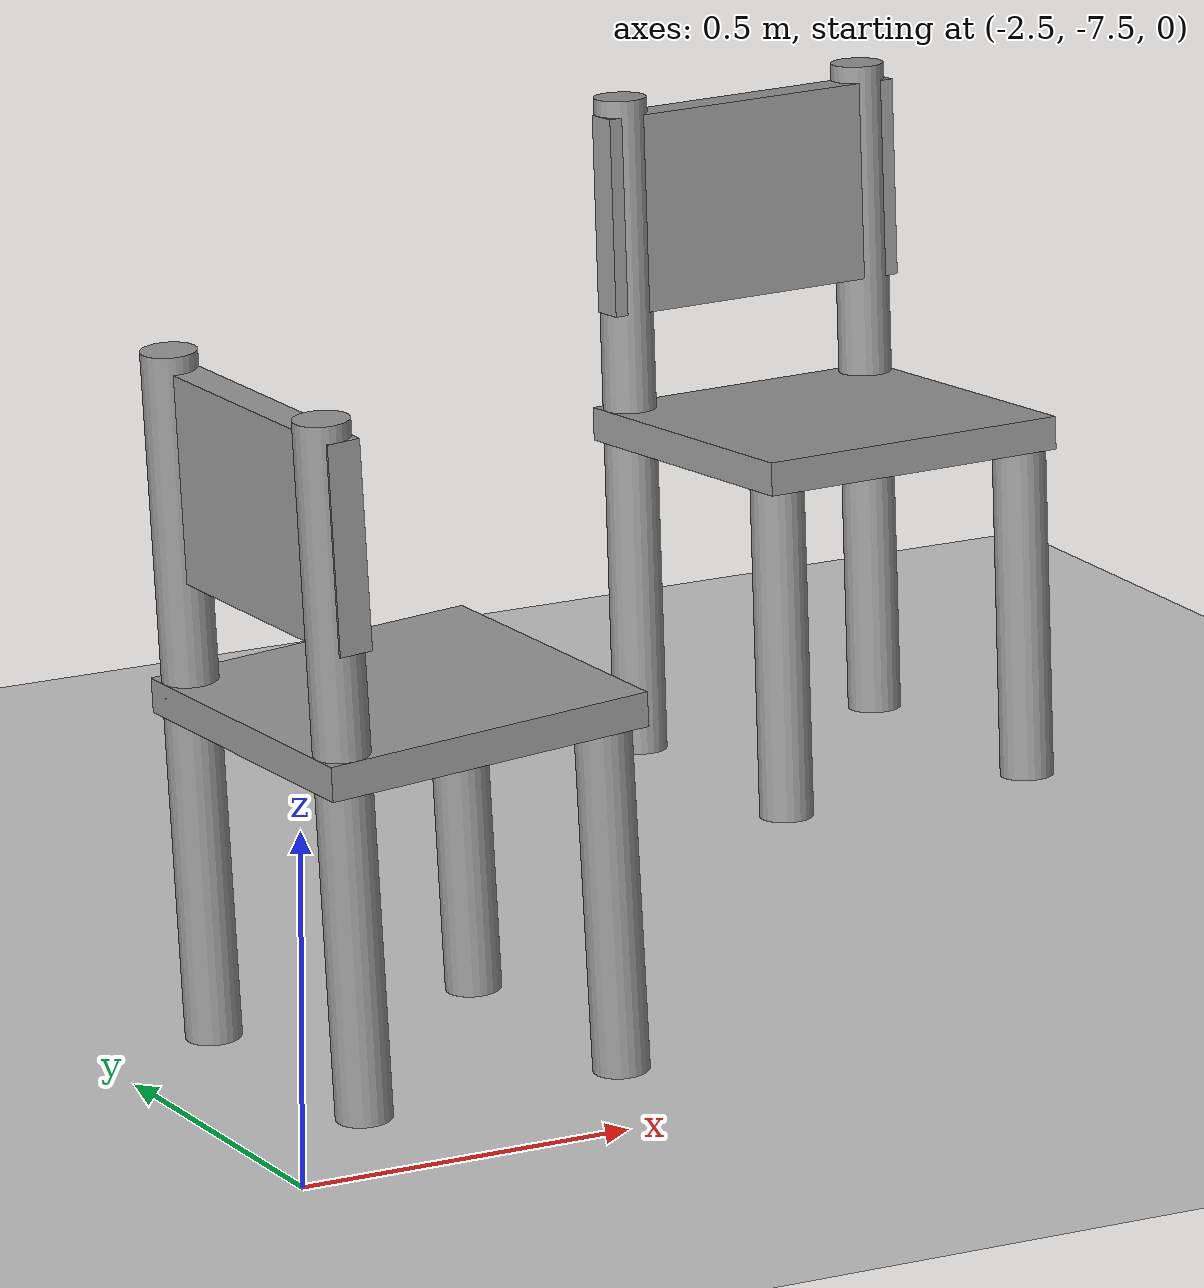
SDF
<sdf version="1.6">
 <world name="default">
  <model name="ground_plane">
   <static>1</static>
   <link name="link">
    <collision name="collision">
     <geometry><plane><normal>0 0 1</normal><size>100 100</size></plane></geometry>
     <surface><friction><ode><mu>100</mu><mu2>50</mu2></ode></friction></surface>
    </collision>
    <visual name="visual">
     <cast_shadows>0</cast_shadows>
     <geometry><plane><normal>0 0 1</normal><size>100 100</size></plane></geometry>
     <material>
      <script><uri>file://media/materials/scripts/gazebo.material</uri><name>Gazebo/Grey</name></script>
     </material>
    </visual>
   </link>
  </model>
  <model name="chair_clone_0">
   <link name="link_2">
    <pose>0.235 -0.21 -0.2375 0 -0 0</pose>
    <inertial>
     <mass>1</mass>
     <inertia><ixx>0.145833</ixx><ixy>0</ixy><ixz>0</ixz><iyy>0.145833</iyy><iyz>0</iyz><izz>0.125</izz></inertia>
    </inertial>
    <visual name="visual">
     <geometry><cylinder><radius>0.04</radius><length>0.5</length></cylinder></geometry>
     <material>
      <lighting>1</lighting>
      <script><uri>file://media/materials/scripts/gazebo.material</uri><name>Gazebo/Grey</name></script>
      <shader type="pixel"><normal_map>__default__</normal_map></shader>
      <ambient>0.3 0.3 0.3 1</ambient>
      <diffuse>0.7 0.7 0.7 1</diffuse>
      <specular>0.01 0.01 0.01 1</specular>
      <emissive>0 0 0 1</emissive>
     </material>
    </visual>
    <collision name="collision">
     <geometry><cylinder><radius>0.04</radius><length>0.5</length></cylinder></geometry>
     <surface>
      <friction>
       <ode><mu>1</mu><mu2>1</mu2><fdir1>0 0 0</fdir1><slip1>0</slip1><slip2>0</slip2></ode>
       <torsional>
        <coefficient>1</coefficient>
        <patch_radius>0</patch_radius>
        <surface_radius>0</surface_radius>
        <use_patch_radius>1</use_patch_radius>
        <ode><slip>0</slip></ode>
       </torsional>
      </friction>
      <bounce><restitution_coefficient>0</restitution_coefficient><threshold>1e+06</threshold></bounce>
      <contact>
       <collide_without_contact>0</collide_without_contact>
       <collide_without_contact_bitmask>1</collide_without_contact_bitmask>
       <collide_bitmask>1</collide_bitmask>
       <ode>
        <soft_cfm>0</soft_cfm>
        <soft_erp>0.2</soft_erp>
        <kp>1e+13</kp>
        <kd>1</kd>
        <max_vel>0.01</max_vel>
        <min_depth>0</min_depth>
       </ode>
       <bullet>
        <split_impulse>1</split_impulse>
        <split_impulse_penetration_threshold>-0.01</split_impulse_penetration_threshold>
        <soft_cfm>0</soft_cfm>
        <soft_erp>0.2</soft_erp>
        <kp>1e+13</kp>
        <kd>1</kd>
       </bullet>
      </contact>
     </surface>
    </collision>
   </link>
   <link name="link_2_clone">
    <pose>0.245 0.21 -0.2375 0 -0 0</pose>
    <inertial>
     <mass>1</mass>
     <inertia><ixx>0.145833</ixx><ixy>0</ixy><ixz>0</ixz><iyy>0.145833</iyy><iyz>0</iyz><izz>0.125</izz></inertia>
    </inertial>
    <visual name="visual">
     <geometry><cylinder><radius>0.04</radius><length>0.5</length></cylinder></geometry>
     <material>
      <lighting>1</lighting>
      <script><uri>file://media/materials/scripts/gazebo.material</uri><name>Gazebo/Grey</name></script>
      <shader type="pixel"><normal_map>__default__</normal_map></shader>
      <ambient>0.3 0.3 0.3 1</ambient>
      <diffuse>0.7 0.7 0.7 1</diffuse>
      <specular>0.01 0.01 0.01 1</specular>
      <emissive>0 0 0 1</emissive>
     </material>
    </visual>
    <collision name="collision">
     <geometry><cylinder><radius>0.04</radius><length>0.5</length></cylinder></geometry>
     <surface>
      <friction>
       <ode><mu>1</mu><mu2>1</mu2><fdir1>0 0 0</fdir1><slip1>0</slip1><slip2>0</slip2></ode>
       <torsional>
        <coefficient>1</coefficient>
        <patch_radius>0</patch_radius>
        <surface_radius>0</surface_radius>
        <use_patch_radius>1</use_patch_radius>
        <ode><slip>0</slip></ode>
       </torsional>
      </friction>
      <bounce><restitution_coefficient>0</restitution_coefficient><threshold>1e+06</threshold></bounce>
      <contact>
       <collide_without_contact>0</collide_without_contact>
       <collide_without_contact_bitmask>1</collide_without_contact_bitmask>
       <collide_bitmask>1</collide_bitmask>
       <ode>
        <soft_cfm>0</soft_cfm>
        <soft_erp>0.2</soft_erp>
        <kp>1e+13</kp>
        <kd>1</kd>
        <max_vel>0.01</max_vel>
        <min_depth>0</min_depth>
       </ode>
       <bullet>
        <split_impulse>1</split_impulse>
        <split_impulse_penetration_threshold>-0.01</split_impulse_penetration_threshold>
        <soft_cfm>0</soft_cfm>
        <soft_erp>0.2</soft_erp>
        <kp>1e+13</kp>
        <kd>1</kd>
       </bullet>
      </contact>
     </surface>
    </collision>
   </link>
   <link name="link_2_clone_1">
    <pose>-0.175 -0.21 0.0375 0 -0 0</pose>
    <inertial>
     <mass>1</mass>
     <inertia><ixx>0.145833</ixx><ixy>0</ixy><ixz>0</ixz><iyy>0.145833</iyy><iyz>0</iyz><izz>0.125</izz></inertia>
    </inertial>
    <visual name="visual">
     <geometry><cylinder><radius>0.04</radius><length>1</length></cylinder></geometry>
     <material>
      <lighting>1</lighting>
      <script><uri>file://media/materials/scripts/gazebo.material</uri><name>Gazebo/Grey</name></script>
      <shader type="pixel"><normal_map>__default__</normal_map></shader>
      <ambient>0.3 0.3 0.3 1</ambient>
      <diffuse>0.7 0.7 0.7 1</diffuse>
      <specular>0.01 0.01 0.01 1</specular>
      <emissive>0 0 0 1</emissive>
     </material>
    </visual>
    <collision name="collision">
     <geometry><cylinder><radius>0.04</radius><length>1</length></cylinder></geometry>
     <surface>
      <friction>
       <ode><mu>1</mu><mu2>1</mu2><fdir1>0 0 0</fdir1><slip1>0</slip1><slip2>0</slip2></ode>
       <torsional>
        <coefficient>1</coefficient>
        <patch_radius>0</patch_radius>
        <surface_radius>0</surface_radius>
        <use_patch_radius>1</use_patch_radius>
        <ode><slip>0</slip></ode>
       </torsional>
      </friction>
      <bounce><restitution_coefficient>0</restitution_coefficient><threshold>1e+06</threshold></bounce>
      <contact>
       <collide_without_contact>0</collide_without_contact>
       <collide_without_contact_bitmask>1</collide_without_contact_bitmask>
       <collide_bitmask>1</collide_bitmask>
       <ode>
        <soft_cfm>0</soft_cfm>
        <soft_erp>0.2</soft_erp>
        <kp>1e+13</kp>
        <kd>1</kd>
        <max_vel>0.01</max_vel>
        <min_depth>0</min_depth>
       </ode>
       <bullet>
        <split_impulse>1</split_impulse>
        <split_impulse_penetration_threshold>-0.01</split_impulse_penetration_threshold>
        <soft_cfm>0</soft_cfm>
        <soft_erp>0.2</soft_erp>
        <kp>1e+13</kp>
        <kd>1</kd>
       </bullet>
      </contact>
     </surface>
    </collision>
   </link>
   <link name="link_2_clone_1_clone">
    <pose>-0.175 0.21 0.0375 0 -0 0</pose>
    <inertial>
     <mass>1</mass>
     <inertia><ixx>0.145833</ixx><ixy>0</ixy><ixz>0</ixz><iyy>0.145833</iyy><iyz>0</iyz><izz>0.125</izz></inertia>
    </inertial>
    <visual name="visual">
     <geometry><cylinder><radius>0.04</radius><length>1</length></cylinder></geometry>
     <material>
      <lighting>1</lighting>
      <script><uri>file://media/materials/scripts/gazebo.material</uri><name>Gazebo/Grey</name></script>
      <shader type="pixel"><normal_map>__default__</normal_map></shader>
      <ambient>0.3 0.3 0.3 1</ambient>
      <diffuse>0.7 0.7 0.7 1</diffuse>
      <specular>0.01 0.01 0.01 1</specular>
      <emissive>0 0 0 1</emissive>
     </material>
    </visual>
    <collision name="collision">
     <geometry><cylinder><radius>0.04</radius><length>1</length></cylinder></geometry>
     <surface>
      <friction>
       <ode><mu>1</mu><mu2>1</mu2><fdir1>0 0 0</fdir1><slip1>0</slip1><slip2>0</slip2></ode>
       <torsional>
        <coefficient>1</coefficient>
        <patch_radius>0</patch_radius>
        <surface_radius>0</surface_radius>
        <use_patch_radius>1</use_patch_radius>
        <ode><slip>0</slip></ode>
       </torsional>
      </friction>
      <bounce><restitution_coefficient>0</restitution_coefficient><threshold>1e+06</threshold></bounce>
      <contact>
       <collide_without_contact>0</collide_without_contact>
       <collide_without_contact_bitmask>1</collide_without_contact_bitmask>
       <collide_bitmask>1</collide_bitmask>
       <ode>
        <soft_cfm>0</soft_cfm>
        <soft_erp>0.2</soft_erp>
        <kp>1e+13</kp>
        <kd>1</kd>
        <max_vel>0.01</max_vel>
        <min_depth>0</min_depth>
       </ode>
       <bullet>
        <split_impulse>1</split_impulse>
        <split_impulse_penetration_threshold>-0.01</split_impulse_penetration_threshold>
        <soft_cfm>0</soft_cfm>
        <soft_erp>0.2</soft_erp>
        <kp>1e+13</kp>
        <kd>1</kd>
       </bullet>
      </contact>
     </surface>
    </collision>
   </link>
   <link name="link_3">
    <pose>0.035 -0 0.0375 0 -0 0</pose>
    <inertial>
     <mass>1</mass>
     <inertia>
      <ixx>0.166667</ixx>
      <ixy>0</ixy>
      <ixz>0</ixz>
      <iyy>0.166667</iyy>
      <iyz>0</iyz>
      <izz>0.166667</izz>
     </inertia>
    </inertial>
    <visual name="visual">
     <geometry><box><size>0.5 0.5 0.05</size></box></geometry>
     <material>
      <lighting>1</lighting>
      <script><uri>file://media/materials/scripts/gazebo.material</uri><name>Gazebo/Grey</name></script>
      <shader type="pixel"><normal_map>__default__</normal_map></shader>
      <ambient>0.3 0.3 0.3 1</ambient>
      <diffuse>0.7 0.7 0.7 1</diffuse>
      <specular>0.01 0.01 0.01 1</specular>
      <emissive>0 0 0 1</emissive>
     </material>
    </visual>
    <collision name="collision">
     <geometry><box><size>0.5 0.5 0.05</size></box></geometry>
     <surface>
      <friction>
       <ode><mu>1</mu><mu2>1</mu2><fdir1>0 0 0</fdir1><slip1>0</slip1><slip2>0</slip2></ode>
       <torsional>
        <coefficient>1</coefficient>
        <patch_radius>0</patch_radius>
        <surface_radius>0</surface_radius>
        <use_patch_radius>1</use_patch_radius>
        <ode><slip>0</slip></ode>
       </torsional>
      </friction>
      <bounce><restitution_coefficient>0</restitution_coefficient><threshold>1e+06</threshold></bounce>
      <contact>
       <collide_without_contact>0</collide_without_contact>
       <collide_without_contact_bitmask>1</collide_without_contact_bitmask>
       <collide_bitmask>1</collide_bitmask>
       <ode>
        <soft_cfm>0</soft_cfm>
        <soft_erp>0.2</soft_erp>
        <kp>1e+13</kp>
        <kd>1</kd>
        <max_vel>0.01</max_vel>
        <min_depth>0</min_depth>
       </ode>
       <bullet>
        <split_impulse>1</split_impulse>
        <split_impulse_penetration_threshold>-0.01</split_impulse_penetration_threshold>
        <soft_cfm>0</soft_cfm>
        <soft_erp>0.2</soft_erp>
        <kp>1e+13</kp>
        <kd>1</kd>
       </bullet>
      </contact>
     </surface>
    </collision>
   </link>
   <link name="link_4">
    <pose>-0.165 -0 0.3625 0 -0 0</pose>
    <inertial>
     <mass>1</mass>
     <inertia>
      <ixx>0.166667</ixx>
      <ixy>0</ixy>
      <ixz>0</ixz>
      <iyy>0.166667</iyy>
      <iyz>0</iyz>
      <izz>0.166667</izz>
     </inertia>
    </inertial>
    <visual name="visual">
     <geometry><box><size>0.05 0.5 0.3</size></box></geometry>
     <material>
      <lighting>1</lighting>
      <script><uri>file://media/materials/scripts/gazebo.material</uri><name>Gazebo/Grey</name></script>
      <shader type="pixel"><normal_map>__default__</normal_map></shader>
      <ambient>0.3 0.3 0.3 1</ambient>
      <diffuse>0.7 0.7 0.7 1</diffuse>
      <specular>0.01 0.01 0.01 1</specular>
      <emissive>0 0 0 1</emissive>
     </material>
    </visual>
    <collision name="collision">
     <geometry><box><size>0.05 0.5 0.3</size></box></geometry>
     <surface>
      <friction>
       <ode><mu>1</mu><mu2>1</mu2><fdir1>0 0 0</fdir1><slip1>0</slip1><slip2>0</slip2></ode>
       <torsional>
        <coefficient>1</coefficient>
        <patch_radius>0</patch_radius>
        <surface_radius>0</surface_radius>
        <use_patch_radius>1</use_patch_radius>
        <ode><slip>0</slip></ode>
       </torsional>
      </friction>
      <bounce><restitution_coefficient>0</restitution_coefficient><threshold>1e+06</threshold></bounce>
      <contact>
       <collide_without_contact>0</collide_without_contact>
       <collide_without_contact_bitmask>1</collide_without_contact_bitmask>
       <collide_bitmask>1</collide_bitmask>
       <ode>
        <soft_cfm>0</soft_cfm>
        <soft_erp>0.2</soft_erp>
        <kp>1e+13</kp>
        <kd>1</kd>
        <max_vel>0.01</max_vel>
        <min_depth>0</min_depth>
       </ode>
       <bullet>
        <split_impulse>1</split_impulse>
        <split_impulse_penetration_threshold>-0.01</split_impulse_penetration_threshold>
        <soft_cfm>0</soft_cfm>
        <soft_erp>0.2</soft_erp>
        <kp>1e+13</kp>
        <kd>1</kd>
       </bullet>
      </contact>
     </surface>
    </collision>
   </link>
   <joint name="link_3_JOINT_10" type="fixed">
    <parent>link_3</parent>
    <child>link_2_clone_1_clone</child>
    <physics>
     <ode><limit><cfm>0</cfm><erp>0.2</erp></limit><suspension><cfm>0</cfm><erp>0.2</erp></suspension></ode>
    </physics>
   </joint>
   <joint name="link_3_JOINT_11" type="fixed">
    <parent>link_3</parent>
    <child>link_2_clone_1</child>
    <physics>
     <ode><limit><cfm>0</cfm><erp>0.2</erp></limit><suspension><cfm>0</cfm><erp>0.2</erp></suspension></ode>
    </physics>
   </joint>
   <joint name="link_3_JOINT_12" type="fixed">
    <parent>link_3</parent>
    <child>link_2</child>
    <physics>
     <ode><limit><cfm>0</cfm><erp>0.2</erp></limit><suspension><cfm>0</cfm><erp>0.2</erp></suspension></ode>
    </physics>
   </joint>
   <joint name="link_3_JOINT_14" type="fixed">
    <parent>link_3</parent>
    <child>link_4</child>
    <physics>
     <ode><limit><cfm>0</cfm><erp>0.2</erp></limit><suspension><cfm>0</cfm><erp>0.2</erp></suspension></ode>
    </physics>
   </joint>
   <joint name="link_3_JOINT_9" type="fixed">
    <parent>link_3</parent>
    <child>link_2_clone</child>
    <physics>
     <ode><limit><cfm>0</cfm><erp>0.2</erp></limit><suspension><cfm>0</cfm><erp>0.2</erp></suspension></ode>
    </physics>
   </joint>
   <static>0</static>
   <pose>-0.894461 -6.076 0.474728 -9e-06 -0.060887 -1.52503</pose>
  </model>
  <model name="chair_clone_1">
   <link name="link_2">
    <pose>0.235 -0.21 -0.2375 0 -0 0</pose>
    <inertial>
     <mass>1</mass>
     <inertia><ixx>0.145833</ixx><ixy>0</ixy><ixz>0</ixz><iyy>0.145833</iyy><iyz>0</iyz><izz>0.125</izz></inertia>
    </inertial>
    <visual name="visual">
     <geometry><cylinder><radius>0.04</radius><length>0.5</length></cylinder></geometry>
     <material>
      <lighting>1</lighting>
      <script><uri>file://media/materials/scripts/gazebo.material</uri><name>Gazebo/Grey</name></script>
      <shader type="pixel"><normal_map>__default__</normal_map></shader>
      <ambient>0.3 0.3 0.3 1</ambient>
      <diffuse>0.7 0.7 0.7 1</diffuse>
      <specular>0.01 0.01 0.01 1</specular>
      <emissive>0 0 0 1</emissive>
     </material>
    </visual>
    <collision name="collision">
     <geometry><cylinder><radius>0.04</radius><length>0.5</length></cylinder></geometry>
     <surface>
      <friction>
       <ode><mu>1</mu><mu2>1</mu2><fdir1>0 0 0</fdir1><slip1>0</slip1><slip2>0</slip2></ode>
       <torsional>
        <coefficient>1</coefficient>
        <patch_radius>0</patch_radius>
        <surface_radius>0</surface_radius>
        <use_patch_radius>1</use_patch_radius>
        <ode><slip>0</slip></ode>
       </torsional>
      </friction>
      <bounce><restitution_coefficient>0</restitution_coefficient><threshold>1e+06</threshold></bounce>
      <contact>
       <collide_without_contact>0</collide_without_contact>
       <collide_without_contact_bitmask>1</collide_without_contact_bitmask>
       <collide_bitmask>1</collide_bitmask>
       <ode>
        <soft_cfm>0</soft_cfm>
        <soft_erp>0.2</soft_erp>
        <kp>1e+13</kp>
        <kd>1</kd>
        <max_vel>0.01</max_vel>
        <min_depth>0</min_depth>
       </ode>
       <bullet>
        <split_impulse>1</split_impulse>
        <split_impulse_penetration_threshold>-0.01</split_impulse_penetration_threshold>
        <soft_cfm>0</soft_cfm>
        <soft_erp>0.2</soft_erp>
        <kp>1e+13</kp>
        <kd>1</kd>
       </bullet>
      </contact>
     </surface>
    </collision>
   </link>
   <link name="link_2_clone">
    <pose>0.245 0.21 -0.2375 0 -0 0</pose>
    <inertial>
     <mass>1</mass>
     <inertia><ixx>0.145833</ixx><ixy>0</ixy><ixz>0</ixz><iyy>0.145833</iyy><iyz>0</iyz><izz>0.125</izz></inertia>
    </inertial>
    <visual name="visual">
     <geometry><cylinder><radius>0.04</radius><length>0.5</length></cylinder></geometry>
     <material>
      <lighting>1</lighting>
      <script><uri>file://media/materials/scripts/gazebo.material</uri><name>Gazebo/Grey</name></script>
      <shader type="pixel"><normal_map>__default__</normal_map></shader>
      <ambient>0.3 0.3 0.3 1</ambient>
      <diffuse>0.7 0.7 0.7 1</diffuse>
      <specular>0.01 0.01 0.01 1</specular>
      <emissive>0 0 0 1</emissive>
     </material>
    </visual>
    <collision name="collision">
     <geometry><cylinder><radius>0.04</radius><length>0.5</length></cylinder></geometry>
     <surface>
      <friction>
       <ode><mu>1</mu><mu2>1</mu2><fdir1>0 0 0</fdir1><slip1>0</slip1><slip2>0</slip2></ode>
       <torsional>
        <coefficient>1</coefficient>
        <patch_radius>0</patch_radius>
        <surface_radius>0</surface_radius>
        <use_patch_radius>1</use_patch_radius>
        <ode><slip>0</slip></ode>
       </torsional>
      </friction>
      <bounce><restitution_coefficient>0</restitution_coefficient><threshold>1e+06</threshold></bounce>
      <contact>
       <collide_without_contact>0</collide_without_contact>
       <collide_without_contact_bitmask>1</collide_without_contact_bitmask>
       <collide_bitmask>1</collide_bitmask>
       <ode>
        <soft_cfm>0</soft_cfm>
        <soft_erp>0.2</soft_erp>
        <kp>1e+13</kp>
        <kd>1</kd>
        <max_vel>0.01</max_vel>
        <min_depth>0</min_depth>
       </ode>
       <bullet>
        <split_impulse>1</split_impulse>
        <split_impulse_penetration_threshold>-0.01</split_impulse_penetration_threshold>
        <soft_cfm>0</soft_cfm>
        <soft_erp>0.2</soft_erp>
        <kp>1e+13</kp>
        <kd>1</kd>
       </bullet>
      </contact>
     </surface>
    </collision>
   </link>
   <link name="link_2_clone_1">
    <pose>-0.175 -0.21 0.0375 0 -0 0</pose>
    <inertial>
     <mass>1</mass>
     <inertia><ixx>0.145833</ixx><ixy>0</ixy><ixz>0</ixz><iyy>0.145833</iyy><iyz>0</iyz><izz>0.125</izz></inertia>
    </inertial>
    <visual name="visual">
     <geometry><cylinder><radius>0.04</radius><length>1</length></cylinder></geometry>
     <material>
      <lighting>1</lighting>
      <script><uri>file://media/materials/scripts/gazebo.material</uri><name>Gazebo/Grey</name></script>
      <shader type="pixel"><normal_map>__default__</normal_map></shader>
      <ambient>0.3 0.3 0.3 1</ambient>
      <diffuse>0.7 0.7 0.7 1</diffuse>
      <specular>0.01 0.01 0.01 1</specular>
      <emissive>0 0 0 1</emissive>
     </material>
    </visual>
    <collision name="collision">
     <geometry><cylinder><radius>0.04</radius><length>1</length></cylinder></geometry>
     <surface>
      <friction>
       <ode><mu>1</mu><mu2>1</mu2><fdir1>0 0 0</fdir1><slip1>0</slip1><slip2>0</slip2></ode>
       <torsional>
        <coefficient>1</coefficient>
        <patch_radius>0</patch_radius>
        <surface_radius>0</surface_radius>
        <use_patch_radius>1</use_patch_radius>
        <ode><slip>0</slip></ode>
       </torsional>
      </friction>
      <bounce><restitution_coefficient>0</restitution_coefficient><threshold>1e+06</threshold></bounce>
      <contact>
       <collide_without_contact>0</collide_without_contact>
       <collide_without_contact_bitmask>1</collide_without_contact_bitmask>
       <collide_bitmask>1</collide_bitmask>
       <ode>
        <soft_cfm>0</soft_cfm>
        <soft_erp>0.2</soft_erp>
        <kp>1e+13</kp>
        <kd>1</kd>
        <max_vel>0.01</max_vel>
        <min_depth>0</min_depth>
       </ode>
       <bullet>
        <split_impulse>1</split_impulse>
        <split_impulse_penetration_threshold>-0.01</split_impulse_penetration_threshold>
        <soft_cfm>0</soft_cfm>
        <soft_erp>0.2</soft_erp>
        <kp>1e+13</kp>
        <kd>1</kd>
       </bullet>
      </contact>
     </surface>
    </collision>
   </link>
   <link name="link_2_clone_1_clone">
    <pose>-0.175 0.21 0.0375 0 -0 0</pose>
    <inertial>
     <mass>1</mass>
     <inertia><ixx>0.145833</ixx><ixy>0</ixy><ixz>0</ixz><iyy>0.145833</iyy><iyz>0</iyz><izz>0.125</izz></inertia>
    </inertial>
    <visual name="visual">
     <geometry><cylinder><radius>0.04</radius><length>1</length></cylinder></geometry>
     <material>
      <lighting>1</lighting>
      <script><uri>file://media/materials/scripts/gazebo.material</uri><name>Gazebo/Grey</name></script>
      <shader type="pixel"><normal_map>__default__</normal_map></shader>
      <ambient>0.3 0.3 0.3 1</ambient>
      <diffuse>0.7 0.7 0.7 1</diffuse>
      <specular>0.01 0.01 0.01 1</specular>
      <emissive>0 0 0 1</emissive>
     </material>
    </visual>
    <collision name="collision">
     <geometry><cylinder><radius>0.04</radius><length>1</length></cylinder></geometry>
     <surface>
      <friction>
       <ode><mu>1</mu><mu2>1</mu2><fdir1>0 0 0</fdir1><slip1>0</slip1><slip2>0</slip2></ode>
       <torsional>
        <coefficient>1</coefficient>
        <patch_radius>0</patch_radius>
        <surface_radius>0</surface_radius>
        <use_patch_radius>1</use_patch_radius>
        <ode><slip>0</slip></ode>
       </torsional>
      </friction>
      <bounce><restitution_coefficient>0</restitution_coefficient><threshold>1e+06</threshold></bounce>
      <contact>
       <collide_without_contact>0</collide_without_contact>
       <collide_without_contact_bitmask>1</collide_without_contact_bitmask>
       <collide_bitmask>1</collide_bitmask>
       <ode>
        <soft_cfm>0</soft_cfm>
        <soft_erp>0.2</soft_erp>
        <kp>1e+13</kp>
        <kd>1</kd>
        <max_vel>0.01</max_vel>
        <min_depth>0</min_depth>
       </ode>
       <bullet>
        <split_impulse>1</split_impulse>
        <split_impulse_penetration_threshold>-0.01</split_impulse_penetration_threshold>
        <soft_cfm>0</soft_cfm>
        <soft_erp>0.2</soft_erp>
        <kp>1e+13</kp>
        <kd>1</kd>
       </bullet>
      </contact>
     </surface>
    </collision>
   </link>
   <link name="link_3">
    <pose>0.035 -0 0.0375 0 -0 0</pose>
    <inertial>
     <mass>1</mass>
     <inertia>
      <ixx>0.166667</ixx>
      <ixy>0</ixy>
      <ixz>0</ixz>
      <iyy>0.166667</iyy>
      <iyz>0</iyz>
      <izz>0.166667</izz>
     </inertia>
    </inertial>
    <visual name="visual">
     <geometry><box><size>0.5 0.5 0.05</size></box></geometry>
     <material>
      <lighting>1</lighting>
      <script><uri>file://media/materials/scripts/gazebo.material</uri><name>Gazebo/Grey</name></script>
      <shader type="pixel"><normal_map>__default__</normal_map></shader>
      <ambient>0.3 0.3 0.3 1</ambient>
      <diffuse>0.7 0.7 0.7 1</diffuse>
      <specular>0.01 0.01 0.01 1</specular>
      <emissive>0 0 0 1</emissive>
     </material>
    </visual>
    <collision name="collision">
     <geometry><box><size>0.5 0.5 0.05</size></box></geometry>
     <surface>
      <friction>
       <ode><mu>1</mu><mu2>1</mu2><fdir1>0 0 0</fdir1><slip1>0</slip1><slip2>0</slip2></ode>
       <torsional>
        <coefficient>1</coefficient>
        <patch_radius>0</patch_radius>
        <surface_radius>0</surface_radius>
        <use_patch_radius>1</use_patch_radius>
        <ode><slip>0</slip></ode>
       </torsional>
      </friction>
      <bounce><restitution_coefficient>0</restitution_coefficient><threshold>1e+06</threshold></bounce>
      <contact>
       <collide_without_contact>0</collide_without_contact>
       <collide_without_contact_bitmask>1</collide_without_contact_bitmask>
       <collide_bitmask>1</collide_bitmask>
       <ode>
        <soft_cfm>0</soft_cfm>
        <soft_erp>0.2</soft_erp>
        <kp>1e+13</kp>
        <kd>1</kd>
        <max_vel>0.01</max_vel>
        <min_depth>0</min_depth>
       </ode>
       <bullet>
        <split_impulse>1</split_impulse>
        <split_impulse_penetration_threshold>-0.01</split_impulse_penetration_threshold>
        <soft_cfm>0</soft_cfm>
        <soft_erp>0.2</soft_erp>
        <kp>1e+13</kp>
        <kd>1</kd>
       </bullet>
      </contact>
     </surface>
    </collision>
   </link>
   <link name="link_4">
    <pose>-0.165 -0 0.3625 0 -0 0</pose>
    <inertial>
     <mass>1</mass>
     <inertia>
      <ixx>0.166667</ixx>
      <ixy>0</ixy>
      <ixz>0</ixz>
      <iyy>0.166667</iyy>
      <iyz>0</iyz>
      <izz>0.166667</izz>
     </inertia>
    </inertial>
    <visual name="visual">
     <geometry><box><size>0.05 0.5 0.3</size></box></geometry>
     <material>
      <lighting>1</lighting>
      <script><uri>file://media/materials/scripts/gazebo.material</uri><name>Gazebo/Grey</name></script>
      <shader type="pixel"><normal_map>__default__</normal_map></shader>
      <ambient>0.3 0.3 0.3 1</ambient>
      <diffuse>0.7 0.7 0.7 1</diffuse>
      <specular>0.01 0.01 0.01 1</specular>
      <emissive>0 0 0 1</emissive>
     </material>
    </visual>
    <collision name="collision">
     <geometry><box><size>0.05 0.5 0.3</size></box></geometry>
     <surface>
      <friction>
       <ode><mu>1</mu><mu2>1</mu2><fdir1>0 0 0</fdir1><slip1>0</slip1><slip2>0</slip2></ode>
       <torsional>
        <coefficient>1</coefficient>
        <patch_radius>0</patch_radius>
        <surface_radius>0</surface_radius>
        <use_patch_radius>1</use_patch_radius>
        <ode><slip>0</slip></ode>
       </torsional>
      </friction>
      <bounce><restitution_coefficient>0</restitution_coefficient><threshold>1e+06</threshold></bounce>
      <contact>
       <collide_without_contact>0</collide_without_contact>
       <collide_without_contact_bitmask>1</collide_without_contact_bitmask>
       <collide_bitmask>1</collide_bitmask>
       <ode>
        <soft_cfm>0</soft_cfm>
        <soft_erp>0.2</soft_erp>
        <kp>1e+13</kp>
        <kd>1</kd>
        <max_vel>0.01</max_vel>
        <min_depth>0</min_depth>
       </ode>
       <bullet>
        <split_impulse>1</split_impulse>
        <split_impulse_penetration_threshold>-0.01</split_impulse_penetration_threshold>
        <soft_cfm>0</soft_cfm>
        <soft_erp>0.2</soft_erp>
        <kp>1e+13</kp>
        <kd>1</kd>
       </bullet>
      </contact>
     </surface>
    </collision>
   </link>
   <joint name="link_3_JOINT_10" type="fixed">
    <parent>link_3</parent>
    <child>link_2_clone_1_clone</child>
    <physics>
     <ode><limit><cfm>0</cfm><erp>0.2</erp></limit><suspension><cfm>0</cfm><erp>0.2</erp></suspension></ode>
    </physics>
   </joint>
   <joint name="link_3_JOINT_11" type="fixed">
    <parent>link_3</parent>
    <child>link_2_clone_1</child>
    <physics>
     <ode><limit><cfm>0</cfm><erp>0.2</erp></limit><suspension><cfm>0</cfm><erp>0.2</erp></suspension></ode>
    </physics>
   </joint>
   <joint name="link_3_JOINT_12" type="fixed">
    <parent>link_3</parent>
    <child>link_2</child>
    <physics>
     <ode><limit><cfm>0</cfm><erp>0.2</erp></limit><suspension><cfm>0</cfm><erp>0.2</erp></suspension></ode>
    </physics>
   </joint>
   <joint name="link_3_JOINT_14" type="fixed">
    <parent>link_3</parent>
    <child>link_4</child>
    <physics>
     <ode><limit><cfm>0</cfm><erp>0.2</erp></limit><suspension><cfm>0</cfm><erp>0.2</erp></suspension></ode>
    </physics>
   </joint>
   <joint name="link_3_JOINT_9" type="fixed">
    <parent>link_3</parent>
    <child>link_2_clone</child>
    <physics>
     <ode><limit><cfm>0</cfm><erp>0.2</erp></limit><suspension><cfm>0</cfm><erp>0.2</erp></suspension></ode>
    </physics>
   </joint>
   <static>0</static>
   <pose>-2.15627 -7.07217 0.474728 -1e-06 -0.060895 0.037695</pose>
  </model>
 </world>
</sdf>
